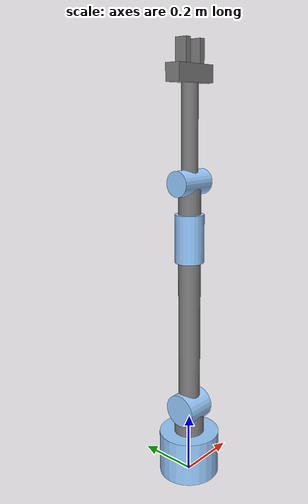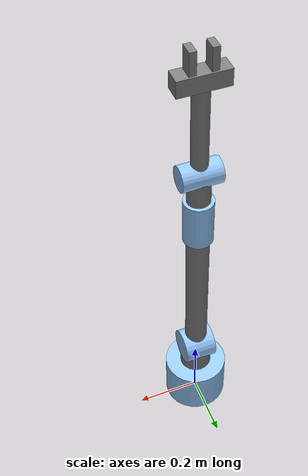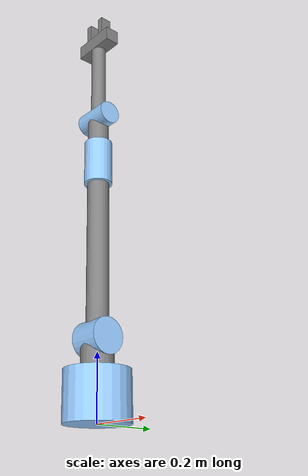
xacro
<?xml version="1.0"?>

<!-- Make the namespace of the robot-->
<robot xmlns:xacro="http://www.ros.org/wiki/xacro" name="r4_arm">
    <!--Define constants-->
    <xacro:property name="link_type" value="cuboidal" />

    <xacro:property name="M_PI" value="3.14159"/>

    <xacro:property name="mass_1" value="20" /> 	<!--base_link mass-->
    <xacro:property name="mass_2" value="5" /> 	<!--link_1 mass-->
    <xacro:property name="mass_3" value="3" /> 	<!--link_2 mass-->
    <xacro:property name="mass_7" value="3" /> 	<!--new_link mass-->
    <xacro:property name="mass_4" value="3" /> 	<!--link_3 mass-->
    <xacro:property name="mass_5" value="1" /> 	<!--gripper base mass -->
    <xacro:property name="mass_6" value="0.2" /> 	<!--finger mass -->

    <xacro:property name="radius_1" value="0.1" />  	<!--base_link radius-->
    <xacro:property name="radius_2" value="0.05" /> 	<!--link_1 radius-->
    <xacro:property name="radius_3" value="0.035" />	<!--link_2 radius-->
    <xacro:property name="radius_7" value="0.035" />	<!--new_link radius-->
    <xacro:property name="radius_4" value="0.025" />	<!--link_3 radius-->
    <xacro:property name="radius_5" value="0.025" />	<!--gripper base radius/width--> <!--link_4-->
    <xacro:property name="radius_6" value="0.02" /> 	<!--finger radius/length--> <!--gripper_link 1, gripper_link 2-->

    <xacro:property name="length_1" value="0.15" /> 	<!--base_link length-->
    <xacro:property name="length_2" value="0.10" />   <!--link_1 length-->
    <xacro:property name="length_3" value="0.5" />  	<!--link_2 length-->
    <xacro:property name="length_7" value="0.10" />   <!--new_link length-->
    <xacro:property name="length_4" value="0.3" /> 	<!--link_3 length-->
    <xacro:property name="length_5" value="0.15" /> 	<!--gripper base length--> <!--link_4-->
    <xacro:property name="length_6" value="0.07" /> 	<!--finger length--> <!--gripper_link 1, gripper_link 2-->

    <xacro:property name="width_1" value="0.5" />  	<!--rover box width_1-->
    <xacro:property name="width_2" value="0.3" /> 	<!--rover box width_2-->
    <xacro:property name="height" value="0.07" />	<!--rover box height-->

    <!--Define Rviz colors-->
    <material name="Black">
        <color rgba="0.0 0.0 0.0 1.0"/>
    </material>
    <material name="Red">
        <color rgba="0.8 0.0 0.0 1.0"/>
    </material>
    <material name="Blue">
        <color rgba="0.0 0.0 1.0 1.0"/>
    </material>
    <material name="LightBlue">
        <color rgba="0.589 0.793 1.0 1.0"/>
    </material>
    <material name="Grey">
        <color rgba="0.5 0.5 0.5 1.0"/>
    </material>
    <material name="White">
        <color rgba="1.0 1.0 1.0 1.0"/>
    </material>

    <!-- macros for inertia -->
    <xacro:macro name="inertial_block" params="mass length radius">
        <inertial>
        <origin xyz="0 0 ${length/2}" rpy="0 0 0"/>
        <mass value="${mass}"/>
        <inertia
            ixx="${mass / 12.0 * (2*radius*2*radius + length*length)}" ixy="0.0" ixz="0.0"
            iyy="${mass / 12.0 * (length*length + 2*radius*2*radius)}" iyz="0.0"
            izz="${mass / 12.0 * (2*radius*2*radius + 2*radius*2*radius)}" />
    </inertial>
    </xacro:macro>

    <!-- macros for transmission -->
    <xacro:macro name="transmission_block" params="joint_name">
	  <transmission name="tran1">
	    <type>transmission_interface/SimpleTransmission</type>
	    <joint name="${joint_name}">
	      <hardwareInterface>hardware_interface/PositionJointInterface</hardwareInterface>
	    </joint>
	    <actuator name="motor1">
	      <hardwareInterface>hardware_interface/PositionJointInterface</hardwareInterface>
	      <mechanicalReduction>1</mechanicalReduction>
	    </actuator>
	  </transmission>
   </xacro:macro>

    <!--Define Gazebo colors-->
    <xacro:macro name="gazebo_grey_link_color_block" params="link_name">
    <gazebo reference="${link_name}">
    <visual>
      <material>
        <ambient>0.5 0.5 0.5 1.0</ambient>
        <diffuse>0.56666695 0.56666695 0.56666695 1.0</diffuse>
        <specular>0.6000003 0.6000003 0.6000003 1.0</specular>
      </material>
    </visual>
    </gazebo>
  </xacro:macro>

  <xacro:macro name="gazebo_blue_link_color_block" params="link_name">
    <gazebo reference="${link_name}">
    <visual>
      <material>
        <ambient>0.589 0.793 1.0 1.0</ambient>
        <diffuse>0.56666695 0.56666695 0.56666695 1.0</diffuse>
        <specular>0.6000003 0.6000003 0.6000003 1.0</specular>
      </material>
    </visual>
    </gazebo>
  </xacro:macro>

    <!--world link-->
    <link name="world"/>
    <joint name="world_joint" type="fixed">
        <origin xyz="0.0 0.0 0.0" rpy="0.0 0.0 0.0"/>
        <parent link="world"/>
        <child link="base_link"/>
    </joint>

    <!--rover_box-->

    <!--base_link-->
    <link name="base_link">
        <xacro:inertial_block mass="${mass_1}" length="${length_1}" radius="${radius_1}"/>
        <visual>
            <origin xyz="0.0 0.0 ${length_1/2.0}" rpy="0.0 0.0 0.0"/>
            <geometry>
                <cylinder radius="${radius_1}" length="${length_1}"/>
            </geometry>
            <material name="LightBlue"/>
        </visual>

        <collision>
            <origin xyz="0.0 0.0 ${length_1/2.0}" rpy="0.0 0.0 0.0"/>
            <geometry>
                <cylinder radius="${radius_1}" length="${length_1}"/>
            </geometry>>
        </collision>
    </link>

    <xacro:gazebo_blue_link_color_block link_name="base_link"/>

    <joint name="joint_1" type="revolute">
        <origin xyz="0.0 0.0 ${length_1}" rpy="0.0 0.0 0.0"/>
        <parent link="base_link"/>
        <child link="link_1"/>
        <axis xyz="0.0 0.0 1"/>
        <limit lower="0.0" upper="${M_PI * 2}" effort="300.0" velocity="1.0"/>
    </joint>

    <!--link_1-->
    <link name="link_1">
        <xacro:inertial_block mass="${mass_2}" length="${length_2}" radius="${radius_2}"/>
        <visual>
            <origin xyz="0.0 0.0 ${length_2/2.0}" rpy="0.0 0.0 0.0"/>
            <geometry>
                <cylinder radius="${radius_2}" length="${length_2}"/>
            </geometry>
            <material name="Grey"/>
        </visual>

        <collision>
            <origin xyz="0.0 0.0 ${length_2/2.0}" rpy="0.0 0.0 0.0"/>
            <geometry>
                <cylinder radius="${radius_2}" length="${length_2}"/>
            </geometry>
        </collision>
    </link>

    <xacro:gazebo_grey_link_color_block link_name="link_1"/>

    <link name="link_1_endlink">
        <xacro:inertial_block mass="${mass_2/3.0}" length="${2*radius_2}" radius="${radius_2}"/> <!--length="${2*radius_2+2*radius_3}-->
        <visual>
            <origin xyz="0.0 0.0 ${(2*radius_2)/2.0}" rpy="0.0 0.0 0.0"/> <!--${(2*radius_2+2*radius_3)/2.0-->
            <geometry>
                <cylinder radius="${radius_2*1.1}" length="${2*radius_2}"/> <!--${2*radius_2+2*radius_3}-->
            </geometry>
            <material name="LightBlue"/>
        </visual>

        <collision>
            <origin xyz="0.0 0.0 ${(2*radius_2)/2.0}" rpy="0.0 0.0 0.0"/> <!--${(2*radius_2+2*radius_3)/2.0-->
            <geometry>
                <cylinder radius="${radius_2*1.1}" length="${2*radius_2}"/> <!--${2*radius_2+2*radius_3}-->
            </geometry>
        </collision>

    </link>

    <xacro:gazebo_blue_link_color_block link_name="link_1_endlink"/>

    <joint name="link_1_endjoint" type="fixed">
        <origin xyz="${-radius_2} 0.0 ${length_2 - 0.01}" rpy="0.0 ${M_PI/2.0} 0.0"/>
        <parent link="link_1"/>
        <child link="link_1_endlink"/>
    </joint>

    <gazebo reference="link_1_endjoint">
        <disableFixedJointLumping>true</disableFixedJointLumping>
        <preserveFixedJoint>true</preserveFixedJoint>
    </gazebo>

    <joint name="joint_2" type="revolute">
        <origin xyz="0.0 0.0 ${length_2}" rpy="0.0 0.0 0.0"/> <!--${radius_2 + radius_3}-->
        <parent link="link_1"/>
        <child link="link_2"/>
        <axis xyz="1.0 0.0 0.0"/>
        <limit lower="0.0" upper="${M_PI * 2}" effort="300.0" velocity="1.0"/>
    </joint>

    <!--link_2-->
    <link name="link_2">
        <xacro:inertial_block mass="${mass_3}" length="${length_3}" radius="${radius_3}"/>
        <visual>
            <origin xyz="0.0 0.0 ${length_3/2.0}" rpy="0.0 0.0 0.0"/>
            <geometry>
                <cylinder radius="${radius_3}" length="${length_3}"/>
            </geometry>
            <material name="Grey"/>
        </visual>

        <collision>
            <origin xyz="0.0 0.0 ${length_3/2.0}" rpy="0.0 0.0 0.0"/>
            <geometry>
                <cylinder radius="${radius_3}" length="${length_3}"/>
            </geometry>>
        </collision>
    </link>

    <xacro:gazebo_grey_link_color_block link_name="link_2"/>

    <link name="link_2_endlink">
        <xacro:inertial_block mass="${mass_3/3.0}" length="${length_1}" radius="${radius_3}"/>
        <visual>
            <origin xyz="0.0 0.0 ${length_1/2.0}" rpy="0.0 0.0 0.0"/> <!--xyz="0.0 0.0 ${(2*radius_3+2*radius_7)/2.0}-->
            <geometry>
                <cylinder radius="${radius_3*1.3}" length="${length_1}"/> <!--radius="${radius_3*1.1}" length="${2*radius_3+2*radius_7}"-->
            </geometry>
            <material name="LightBlue"/>
        </visual>

        <collision>
            <origin xyz="0.0 0.0 ${length_1/2.0}" rpy="0.0 0.0 0.0"/>
            <geometry>
                <cylinder radius="${radius_3*1.3}" length="${length_1}"/>
            </geometry>
        </collision>
    </link>

    <xacro:gazebo_blue_link_color_block link_name="link_2_endlink"/>

    <joint name="link_2_endjoint" type="fixed">
        <origin xyz="0.0 0.0 ${length_3 - 0.01}" rpy="0.0 0.0 0.0"/><!--xyz="${-radius_3} 0.0 ${length_3 - 0.01}" rpy="0.0 ${M_PI/2.0} 0.0"-->
        <parent link="link_2"/>
        <child link="link_2_endlink"/>
    </joint>

    <gazebo reference="link_2_endjoint">
        <disableFixedJointLumping>true</disableFixedJointLumping>
        <preserveFixedJoint>true</preserveFixedJoint>
    </gazebo>

    <joint name="joint_3" type="revolute">
        <origin xyz="0.0 0.0 ${length_3+2*radius_3+2*radius_7}" rpy="0.0 0.0 0.0"/>
        <parent link="link_2"/>
        <child link="new_link"/>
        <axis xyz="0.0 0.0 1.0"/>
        <limit lower="0.0" upper="${M_PI * 2}" effort="300.0" velocity="1.0"/>
    </joint>
    <!--new_link-->
    <link name="new_link">
        <xacro:inertial_block mass="${mass_7}" length="${length_7}" radius="${radius_7}"/>
        <visual>
            <origin xyz="0.0 0.0 ${length_7/2.0}" rpy="0.0 0.0 0.0"/>
            <geometry>
                <cylinder radius="${radius_7}" length="${length_7}"/>
            </geometry>
            <material name="Grey"/>
        </visual>

        <collision>
            <origin xyz="0.0 0.0 ${length_7/2.0}" rpy="0.0 0.0 0.0"/>
            <geometry>
                <cylinder radius="${radius_7}" length="${length_7}"/>
            </geometry>>
        </collision>
    </link>

    <xacro:gazebo_grey_link_color_block link_name="new_link"/>

    <link name="new_link_endlink">
        <xacro:inertial_block mass="${mass_7/3.0}" length="${2*radius_7+2*radius_4}" radius="${radius_7}"/>
        <visual>
            <origin xyz="0.0 0.0 ${(2*radius_7+2*radius_4)/2.0}" rpy="0.0 ${M_PI/2.0} 0.0"/>
            <geometry>
                <cylinder radius="${radius_7*1.1}" length="${2*radius_7+2*radius_4}"/>
            </geometry>
            <material name="LightBlue"/>
        </visual>

        <collision>
            <origin xyz="0.0 0.0 ${(2*radius_7+2*radius_4)/2.0}" rpy="0.0 ${M_PI/2.0} 0.0"/>
            <geometry>
                <cylinder radius="${radius_7*1.1}" length="${2*radius_7+2*radius_4}"/>
            </geometry>
        </collision>
    </link>

    <xacro:gazebo_blue_link_color_block link_name="new_link_endlink"/>

    <joint name="new_link_endjoint" type="fixed">
        <origin xyz="0.0 0.0 ${radius_7}" rpy="0.0 0.0 0.0"/>
        <parent link="new_link"/>
        <child link="new_link_endlink"/>
    </joint>

    <gazebo reference="new_link_endjoint">
        <disableFixedJointLumping>true</disableFixedJointLumping>
        <preserveFixedJoint>true</preserveFixedJoint>
    </gazebo>

    <joint name="new_joint" type="revolute">
        <origin xyz="0.0 0.0 ${length_7 - 0.01}" rpy="0.0 0.0 0.0"/>
        <parent link="new_link"/>
        <child link="link_3"/>
        <axis xyz="1.0 0.0 0.0"/>
        <limit lower="0.0" upper="${M_PI * 2}" effort="300.0" velocity="1.0"/>
    </joint>
    <!--link_3-->
    <link name="link_3">
        <xacro:inertial_block mass="${mass_4}" length="${length_4}" radius="${radius_4}"/>
        <visual>
            <origin xyz="0.0 0.0 ${length_4/2.0}" rpy="0.0 0.0 0.0"/>
            <geometry>
                <cylinder radius="${radius_4}" length="${length_4}"/>
            </geometry>
            <material name="Grey"/>
        </visual>

        <collision>
            <origin xyz="0.0 0.0 ${length_4/2.0}" rpy="0.0 0.0 0.0"/>
            <geometry>
                <cylinder radius="${radius_4}" length="${length_4}"/>
            </geometry>>
        </collision>
    </link>

    <xacro:gazebo_grey_link_color_block link_name="link_3"/>

    <joint name="joint_4" type="revolute">
        <origin xyz="0.0 0.0 ${length_4}" rpy="0.0 0.0 0.0"/>
        <parent link="link_3"/>
        <child link="link_4"/>
        <axis xyz="0.0 0.0 01.0"/>
        <limit lower="0.0" upper="${M_PI * 2}" effort="300.0" velocity="1.0"/>
    </joint>

    <!--link_4-->
    <link name="link_4">
        <xacro:inertial_block mass="${mass_5}" length="${length_5}" radius="${radius_5}"/>
        <visual>
            <origin xyz="0.0 0.0 ${radius_5/2.0}" rpy="0.0 ${M_PI/2.0} 0.0"/>
            <geometry>
                <box size="${radius_5*2} ${radius_5*2} ${length_5}"/>
            </geometry>
            <material name="Grey"/>
        </visual>

        <collision>
            <origin xyz="0.0 0.0 ${radius_5/2.0}" rpy="0.0 0.0 0.0"/>
            <geometry>
                <box size="${radius_5*2} ${radius_5*2} ${length_5}"/>
            </geometry>>
        </collision>
    </link>

    <xacro:gazebo_grey_link_color_block link_name="link_4"/>

    <joint name="gripper_joint_1" type="prismatic">
        <origin xyz="0.0 0.0 ${radius_5 + length_6/2.0}" rpy="0.0 0.0 0.0"/>
        <parent link="link_4"/>
        <child link="gripper_link_1"/>
        <axis xyz="1.0 0.0 0.0"/>
        <limit lower="${radius_6/2.0}" upper="0.05" effort="100.0" velocity="1.0"/>
    </joint>

    <joint name="gripper_joint_2" type="prismatic">
        <origin xyz="0.0 0.0 ${radius_5 + length_6/2.0}" rpy="0.0 0.0 0.0"/>
        <parent link="link_4"/>
        <child link="gripper_link_2"/>
        <axis xyz="1.0 0.0 0.0"/>
        <limit lower="-0.05" upper="${-radius_6/2.0}" effort="100.0" velocity="1.0"/>
    </joint>

    <!--gripper_link_1-->
    <link name="gripper_link_1">
        <xacro:inertial_block mass="${mass_6}" length="${length_6}" radius="${radius_6}"/>
        <visual>
            <origin xyz="0.0 0.0 ${radius_6/2.0}" rpy="0.0 0.0 0.0"/>
            <geometry>
                <box size="${radius_6} ${radius_6*2} ${length_6}"/>
            </geometry>
            <material name="Grey"/>
        </visual>

        <collision>
            <origin xyz="0.0 0.0 ${radius_6/2.0}" rpy="0.0 0.0 0.0"/>
            <geometry>
                <box size="${radius_6*2} ${radius_6*2} ${length_6}"/>
            </geometry>>
        </collision>
    </link>

    <xacro:gazebo_grey_link_color_block link_name="gripper_link_1"/>

    <!--gripper_link_2-->
    <link name="gripper_link_2">
        <xacro:inertial_block mass="${mass_6}" length="${length_6}" radius="${radius_6}"/>
        <visual>
            <origin xyz="0.0 0.0 ${radius_6/2.0}" rpy="0.0 0.0 0.0"/>
            <geometry>
                <box size="${radius_6} ${radius_6*2} ${length_6}"/>
            </geometry>
            <material name="Grey"/>
        </visual>

        <collision>
            <origin xyz="0.0 0.0 ${radius_6/2.0}" rpy="0.0 0.0 0.0"/>
            <geometry>
                <box size="${radius_6*2} ${radius_6*2} ${length_6}"/>
            </geometry>>
        </collision>
    </link>

    <xacro:gazebo_grey_link_color_block link_name="gripper_link_2"/>
    <!--gripper_frame_cp-->

    <!-- Transmissions for ros control -->
    <xacro:transmission_block joint_name="joint_1"/>
    <xacro:transmission_block joint_name="joint_2"/>
    <xacro:transmission_block joint_name="joint_3"/>
    <xacro:transmission_block joint_name="new_joint"/>
    <xacro:transmission_block joint_name="joint_4"/>
    <xacro:transmission_block joint_name="gripper_joint_1"/>
    <xacro:transmission_block joint_name="gripper_joint_2"/>

    <!-- ros_control plugin -->
    <gazebo>
        <plugin name="gazebo_ros_control" filename="libgazebo_ros_control.so">
        <robotNamespace>/r4_arm</robotNamespace>
        </plugin>
    </gazebo>

</robot>
